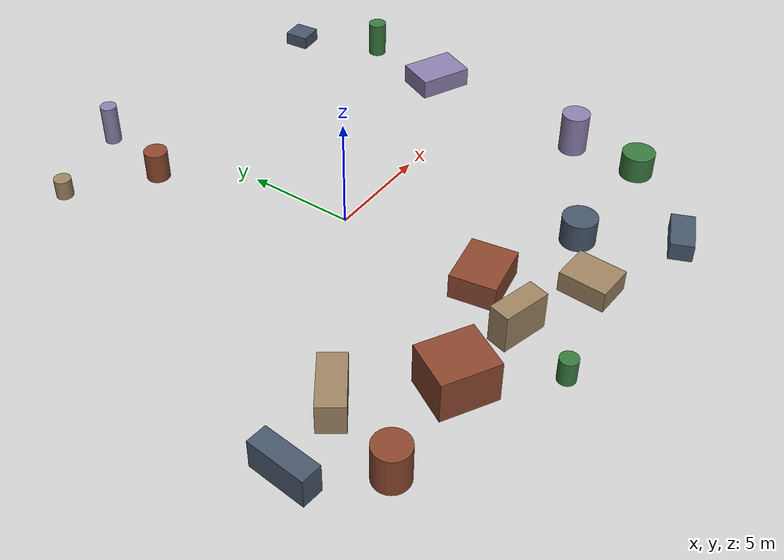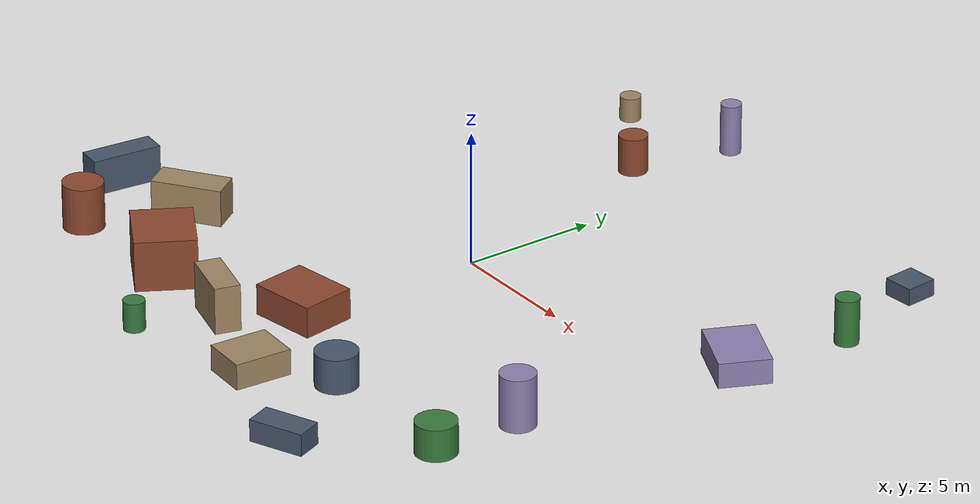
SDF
<sdf version="1.10">
 <world name="robotx_task1_uav_view">
  <gravity>0 0 -9.81</gravity>
  <physics name="physics" type="ode">
   <max_step_size>0.002</max_step_size>
   <real_time_factor>1.0</real_time_factor>
  </physics>
  <scene>
   <ambient>0.20 0.19 0.17 1.0</ambient>
   <background>0.45 0.48 0.42 1.0</background>
   <shadows>true</shadows>
   <grid>false</grid>
  </scene>
  <light name="sun" type="directional">
   <pose>0 0 300 0 0 0</pose>
   <diffuse>0.60 0.58 0.52 1.0</diffuse>
   <specular>0.30 0.35 0.28 1.0</specular>
   <direction>0.22 -0.10 -1.0</direction>
   <attenuation>
    <range>2500</range>
    <constant>0.85</constant>
    <linear>0.001</linear>
    <quadratic>0.00005</quadratic>
   </attenuation>
  </light>
  <plugin filename="gz-sim-physics-system" name="gz::sim::systems::Physics"/>
  <plugin filename="gz-sim-user-commands-system" name="gz::sim::systems::UserCommands"/>
  <plugin filename="gz-sim-scene-broadcaster-system" name="gz::sim::systems::SceneBroadcaster"/>
  <plugin filename="gz-sim-sensors-system" name="gz::sim::systems::Sensors">
   <render_engine>ogre2</render_engine>
  </plugin>
  <model name="scene_clutter_box_000">
   <static>true</static>
   <pose>-1.656 -9.485 0.891 0 0 -1.831244</pose>
   <link name="link">
    <visual name="v">
     <geometry><box><size>0.941 2.171 1.742</size></box></geometry>
     <material><ambient>0.45 0.38 0.32 1.0</ambient><diffuse>0.62 0.52 0.38 1.0</diffuse></material>
    </visual>
   </link>
  </model>
  <model name="scene_clutter_cyl_001">
   <static>true</static>
   <pose>4.637 -8.870 0.693 0 0 -3.083703</pose>
   <link name="link">
    <visual name="v">
     <geometry><cylinder><radius>0.774</radius><length>1.285</length></cylinder></geometry>
     <material><ambient>0.18 0.22 0.28 1.0</ambient><diffuse>0.28 0.34 0.42 1.0</diffuse></material>
    </visual>
   </link>
  </model>
  <model name="scene_clutter_cyl_002">
   <static>true</static>
   <pose>-10.165 -9.506 0.922 0 0 -2.508090</pose>
   <link name="link">
    <visual name="v">
     <geometry><cylinder><radius>0.753</radius><length>1.745</length></cylinder></geometry>
     <material><ambient>0.35 0.16 0.12 1.0</ambient><diffuse>0.55 0.28 0.18 1.0</diffuse></material>
    </visual>
   </link>
  </model>
  <model name="scene_clutter_cyl_003">
   <static>true</static>
   <pose>10.411 -8.843 0.643 0 0 2.646955</pose>
   <link name="link">
    <visual name="v">
     <geometry><cylinder><radius>0.748</radius><length>1.186</length></cylinder></geometry>
     <material><ambient>0.12 0.30 0.14 1.0</ambient><diffuse>0.22 0.48 0.24 1.0</diffuse></material>
    </visual>
   </link>
  </model>
  <model name="scene_clutter_box_004">
   <static>true</static>
   <pose>11.544 2.791 0.483 0 0 2.719177</pose>
   <link name="link">
    <visual name="v">
     <geometry><box><size>2.555 1.886 0.927</size></box></geometry>
     <material><ambient>0.40 0.35 0.50 1.0</ambient><diffuse>0.55 0.50 0.68 1.0</diffuse></material>
    </visual>
   </link>
  </model>
  <model name="scene_clutter_cyl_005">
   <static>true</static>
   <pose>-5.853 11.246 0.506 0 0 -1.216902</pose>
   <link name="link">
    <visual name="v">
     <geometry><cylinder><radius>0.390</radius><length>0.913</length></cylinder></geometry>
     <material><ambient>0.45 0.38 0.32 1.0</ambient><diffuse>0.62 0.52 0.38 1.0</diffuse></material>
    </visual>
   </link>
  </model>
  <model name="scene_clutter_box_006">
   <static>true</static>
   <pose>6.921 -12.558 0.429 0 0 0.397611</pose>
   <link name="link">
    <visual name="v">
     <geometry><box><size>2.040 1.019 0.817</size></box></geometry>
     <material><ambient>0.18 0.22 0.28 1.0</ambient><diffuse>0.28 0.34 0.42 1.0</diffuse></material>
    </visual>
   </link>
  </model>
  <model name="scene_clutter_box_007">
   <static>true</static>
   <pose>-5.517 -9.161 0.964 0 0 -2.086022</pose>
   <link name="link">
    <visual name="v">
     <geometry><box><size>2.215 2.527 1.888</size></box></geometry>
     <material><ambient>0.35 0.16 0.12 1.0</ambient><diffuse>0.55 0.28 0.18 1.0</diffuse></material>
    </visual>
   </link>
  </model>
  <model name="scene_clutter_cyl_008">
   <static>true</static>
   <pose>-2.682 -12.234 0.600 0 0 1.261064</pose>
   <link name="link">
    <visual name="v">
     <geometry><cylinder><radius>0.390</radius><length>1.099</length></cylinder></geometry>
     <material><ambient>0.12 0.30 0.14 1.0</ambient><diffuse>0.22 0.48 0.24 1.0</diffuse></material>
    </visual>
   </link>
  </model>
  <model name="scene_clutter_cyl_009">
   <static>true</static>
   <pose>-1.583 12.555 1.007 0 0 0.287834</pose>
   <link name="link">
    <visual name="v">
     <geometry><cylinder><radius>0.382</radius><length>1.915</length></cylinder></geometry>
     <material><ambient>0.40 0.35 0.50 1.0</ambient><diffuse>0.55 0.50 0.68 1.0</diffuse></material>
    </visual>
   </link>
  </model>
  <model name="scene_clutter_box_010">
   <static>true</static>
   <pose>-8.734 -5.894 0.712 0 0 0.614394</pose>
   <link name="link">
    <visual name="v">
     <geometry><box><size>2.634 1.168 1.384</size></box></geometry>
     <material><ambient>0.45 0.38 0.32 1.0</ambient><diffuse>0.62 0.52 0.38 1.0</diffuse></material>
    </visual>
   </link>
  </model>
  <model name="scene_clutter_box_011">
   <static>true</static>
   <pose>10.789 10.891 0.337 0 0 -1.470986</pose>
   <link name="link">
    <visual name="v">
     <geometry><box><size>1.185 1.147 0.633</size></box></geometry>
     <material><ambient>0.18 0.22 0.28 1.0</ambient><diffuse>0.28 0.34 0.42 1.0</diffuse></material>
    </visual>
   </link>
  </model>
  <model name="scene_clutter_box_012">
   <static>true</static>
   <pose>-0.080 -7.014 0.596 0 0 -2.974970</pose>
   <link name="link">
    <visual name="v">
     <geometry><box><size>2.511 2.035 1.152</size></box></geometry>
     <material><ambient>0.35 0.16 0.12 1.0</ambient><diffuse>0.55 0.28 0.18 1.0</diffuse></material>
    </visual>
   </link>
  </model>
  <model name="scene_clutter_cyl_013">
   <static>true</static>
   <pose>12.253 6.959 0.912 0 0 -0.055525</pose>
   <link name="link">
    <visual name="v">
     <geometry><cylinder><radius>0.434</radius><length>1.725</length></cylinder></geometry>
     <material><ambient>0.12 0.30 0.14 1.0</ambient><diffuse>0.22 0.48 0.24 1.0</diffuse></material>
    </visual>
   </link>
  </model>
  <model name="scene_clutter_cyl_014">
   <static>true</static>
   <pose>10.468 -5.559 1.031 0 0 -2.292641</pose>
   <link name="link">
    <visual name="v">
     <geometry><cylinder><radius>0.645</radius><length>1.963</length></cylinder></geometry>
     <material><ambient>0.40 0.35 0.50 1.0</ambient><diffuse>0.55 0.50 0.68 1.0</diffuse></material>
    </visual>
   </link>
  </model>
  <model name="scene_clutter_box_015">
   <static>true</static>
   <pose>2.216 -10.720 0.499 0 0 1.515583</pose>
   <link name="link">
    <visual name="v">
     <geometry><box><size>2.111 1.708 0.957</size></box></geometry>
     <material><ambient>0.45 0.38 0.32 1.0</ambient><diffuse>0.62 0.52 0.38 1.0</diffuse></material>
    </visual>
   </link>
  </model>
  <model name="scene_clutter_box_016">
   <static>true</static>
   <pose>-12.266 -6.555 0.686 0 0 -1.666149</pose>
   <link name="link">
    <visual name="v">
     <geometry><box><size>2.614 0.916 1.332</size></box></geometry>
     <material><ambient>0.18 0.22 0.28 1.0</ambient><diffuse>0.28 0.34 0.42 1.0</diffuse></material>
    </visual>
   </link>
  </model>
  <model name="scene_clutter_cyl_017">
   <static>true</static>
   <pose>-2.413 8.808 0.760 0 0 0.411994</pose>
   <link name="link">
    <visual name="v">
     <geometry><cylinder><radius>0.533</radius><length>1.420</length></cylinder></geometry>
     <material><ambient>0.35 0.16 0.12 1.0</ambient><diffuse>0.55 0.28 0.18 1.0</diffuse></material>
    </visual>
   </link>
  </model>
  <model name="uav_dataset_camera">
   <static>false</static>
   <pose>0 0 26 0 0 0</pose>
   <plugin filename="librobotx_overhead_motion_plugin.dylib" name="robotx::OverheadMotionPlugin">
    <radius_x_m>8.19990</radius_x_m>
    <radius_y_m>9.59032</radius_y_m>
    <angular_speed_rad_s>0.055181</angular_speed_rad_s>
    <phase_rad>1.972620</phase_rad>
    <z_wobble_m>0.03359</z_wobble_m>
    <z_wobble_hz>0.07754</z_wobble_hz>
    <z_wobble_phase_rad>5.683566</z_wobble_phase_rad>
   </plugin>
   <link name="camera_link">
    <gravity>false</gravity>
    <sensor name="top_down_rgb" type="camera">
     <always_on>true</always_on>
     <update_rate>20</update_rate>
     <pose>0 0 0 0 1.57079632679 0</pose>
     <camera>
      <horizontal_fov>1.05</horizontal_fov>
      <image><width>1920</width><height>1080</height><format>R8G8B8</format></image>
      <clip><near>0.2</near><far>600</far></clip>
     </camera>
     <topic>/robotx/uav/camera/image_raw</topic>
     <visualize>true</visualize>
    </sensor>
   </link>
  </model>
 </world>
</sdf>
